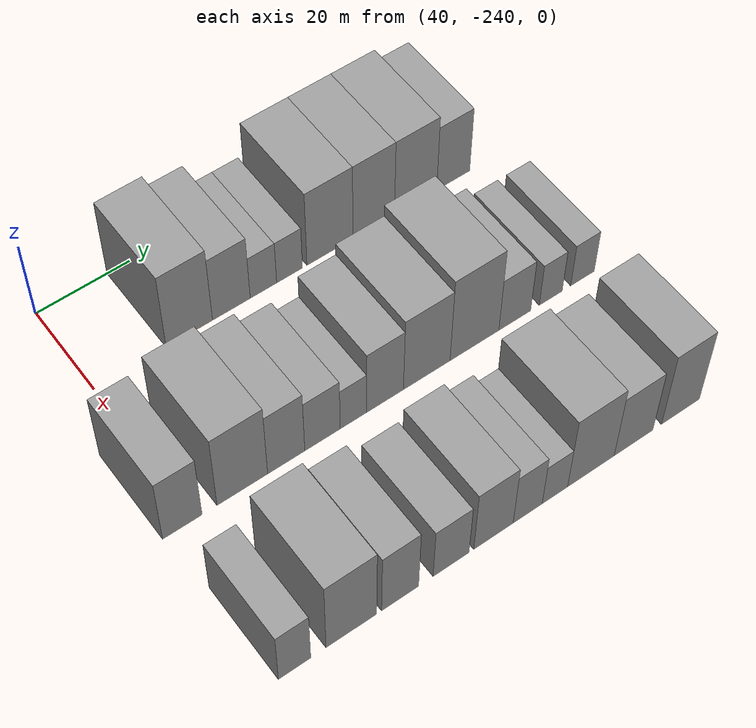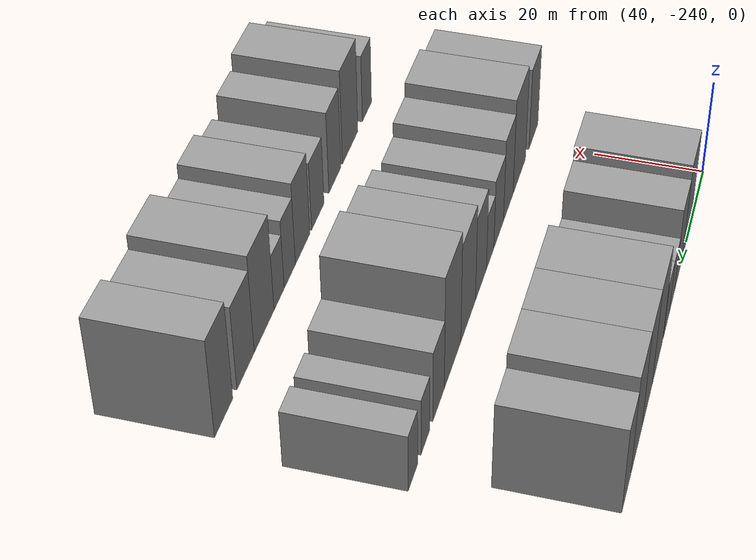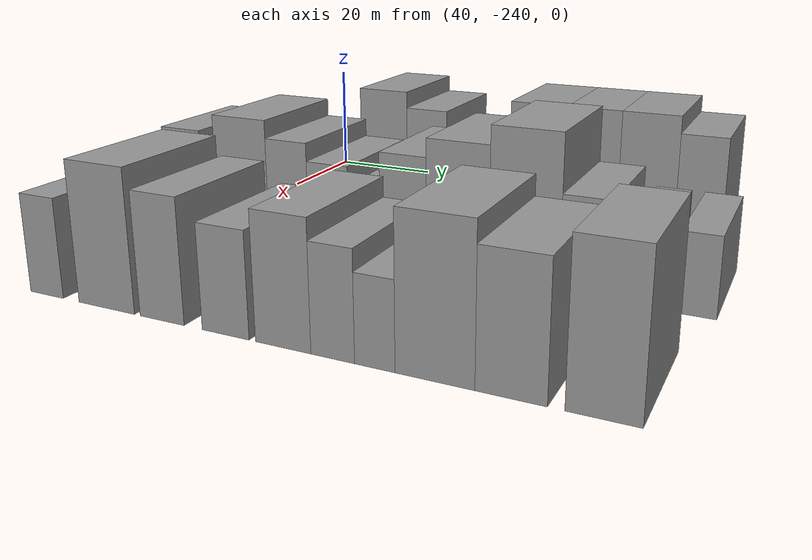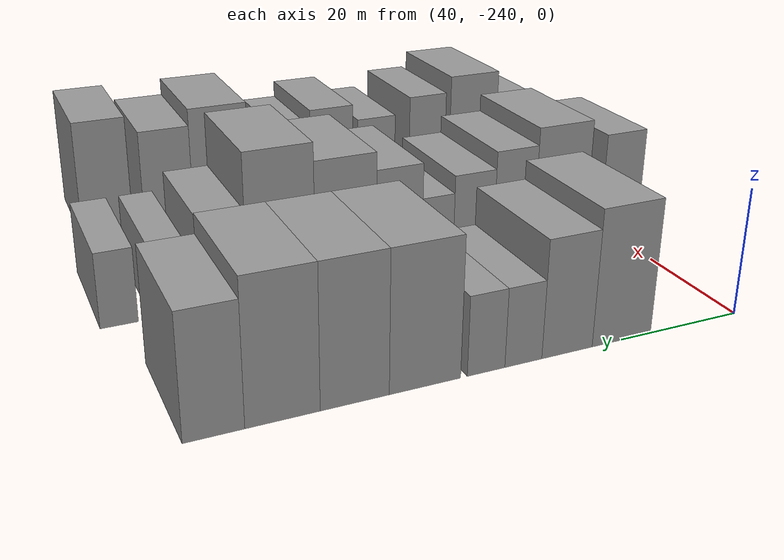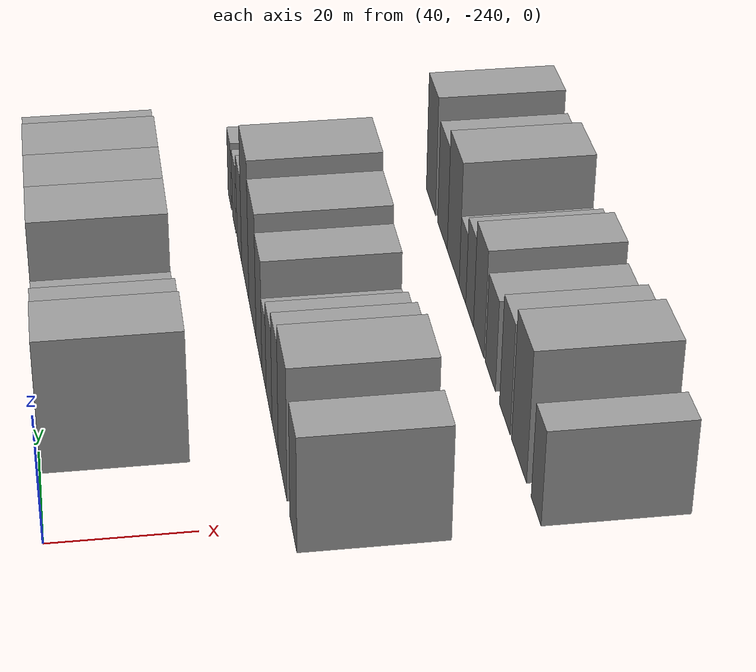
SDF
<sdf version="1.6">
 <world name="default">
  <model name="building_12">
   <static>1</static>
   <pose>50.0000 -219.9695 0 0.000000 0.000000 0.000000</pose>
   <link name="link">
    <pose>0 0 10.50 0 0 0</pose>
    <collision name="collision"><geometry><box><size>20.0000 9.8990 21.0000</size></box></geometry></collision>
    <visual name="visual">
     <cast_shadows>0</cast_shadows>
     <geometry><box><size>20.0000 9.8990 21.0000</size></box></geometry>
     <material>
      <script>
       <uri>model://grey_wall/materials/scripts</uri>
       <uri>model://grey_wall/materials/textures</uri>
       <name>vrc/grey_wall</name>
      </script>
     </material>
    </visual>
   </link>
  </model>
  <model name="building_13">
   <static>1</static>
   <pose>50.0000 -210.9266 0 0.000000 0.000000 0.000000</pose>
   <link name="link">
    <pose>0 0 9.00 0 0 0</pose>
    <collision name="collision"><geometry><box><size>20.0000 8.1867 18.0000</size></box></geometry></collision>
    <visual name="visual">
     <cast_shadows>0</cast_shadows>
     <geometry><box><size>20.0000 8.1867 18.0000</size></box></geometry>
     <material>
      <script>
       <uri>model://grey_wall/materials/scripts</uri>
       <uri>model://grey_wall/materials/textures</uri>
       <name>vrc/grey_wall</name>
      </script>
     </material>
    </visual>
   </link>
  </model>
  <model name="building_14">
   <static>1</static>
   <pose>50.0000 -203.9265 0 0.000000 0.000000 0.000000</pose>
   <link name="link">
    <pose>0 0 6.00 0 0 0</pose>
    <collision name="collision"><geometry><box><size>20.0000 5.8134 12.0000</size></box></geometry></collision>
    <visual name="visual">
     <cast_shadows>0</cast_shadows>
     <geometry><box><size>20.0000 5.8134 12.0000</size></box></geometry>
     <material>
      <script>
       <uri>model://grey_wall/materials/scripts</uri>
       <uri>model://grey_wall/materials/textures</uri>
       <name>vrc/grey_wall</name>
      </script>
     </material>
    </visual>
   </link>
  </model>
  <model name="building_15">
   <static>1</static>
   <pose>50.0000 -198.1525 0 0.000000 0.000000 0.000000</pose>
   <link name="link">
    <pose>0 0 6.00 0 0 0</pose>
    <collision name="collision"><geometry><box><size>20.0000 5.7346 12.0000</size></box></geometry></collision>
    <visual name="visual">
     <cast_shadows>0</cast_shadows>
     <geometry><box><size>20.0000 5.7346 12.0000</size></box></geometry>
     <material>
      <script>
       <uri>model://grey_wall/materials/scripts</uri>
       <uri>model://grey_wall/materials/textures</uri>
       <name>vrc/grey_wall</name>
      </script>
     </material>
    </visual>
   </link>
  </model>
  <model name="building_16">
   <static>1</static>
   <pose>50.0000 -189.0835 0 0.000000 0.000000 0.000000</pose>
   <link name="link">
    <pose>0 0 10.50 0 0 0</pose>
    <collision name="collision"><geometry><box><size>20.0000 10.4035 21.0000</size></box></geometry></collision>
    <visual name="visual">
     <cast_shadows>0</cast_shadows>
     <geometry><box><size>20.0000 10.4035 21.0000</size></box></geometry>
     <material>
      <script>
       <uri>model://grey_wall/materials/scripts</uri>
       <uri>model://grey_wall/materials/textures</uri>
       <name>vrc/grey_wall</name>
      </script>
     </material>
    </visual>
   </link>
  </model>
  <model name="building_17">
   <static>1</static>
   <pose>50.0000 -179.0942 0 0.000000 0.000000 0.000000</pose>
   <link name="link">
    <pose>0 0 10.50 0 0 0</pose>
    <collision name="collision"><geometry><box><size>20.0000 9.5750 21.0000</size></box></geometry></collision>
    <visual name="visual">
     <cast_shadows>0</cast_shadows>
     <geometry><box><size>20.0000 9.5750 21.0000</size></box></geometry>
     <material>
      <script>
       <uri>model://grey_wall/materials/scripts</uri>
       <uri>model://grey_wall/materials/textures</uri>
       <name>vrc/grey_wall</name>
      </script>
     </material>
    </visual>
   </link>
  </model>
  <model name="building_18">
   <static>1</static>
   <pose>50.0000 -169.3435 0 0.000000 0.000000 0.000000</pose>
   <link name="link">
    <pose>0 0 10.50 0 0 0</pose>
    <collision name="collision"><geometry><box><size>20.0000 9.9265 21.0000</size></box></geometry></collision>
    <visual name="visual">
     <cast_shadows>0</cast_shadows>
     <geometry><box><size>20.0000 9.9265 21.0000</size></box></geometry>
     <material>
      <script>
       <uri>model://grey_wall/materials/scripts</uri>
       <uri>model://grey_wall/materials/textures</uri>
       <name>vrc/grey_wall</name>
      </script>
     </material>
    </visual>
   </link>
  </model>
  <model name="building_19">
   <static>1</static>
   <pose>50.0000 -160.4506 0 0.000000 0.000000 0.000000</pose>
   <link name="link">
    <pose>0 0 9.00 0 0 0</pose>
    <collision name="collision"><geometry><box><size>20.0000 7.8593 18.0000</size></box></geometry></collision>
    <visual name="visual">
     <cast_shadows>0</cast_shadows>
     <geometry><box><size>20.0000 7.8593 18.0000</size></box></geometry>
     <material>
      <script>
       <uri>model://grey_wall/materials/scripts</uri>
       <uri>model://grey_wall/materials/textures</uri>
       <name>vrc/grey_wall</name>
      </script>
     </material>
    </visual>
   </link>
  </model>
  <model name="building_83">
   <static>1</static>
   <pose>82.0000 -242.2172 0 0.000000 0.000000 0.000000</pose>
   <link name="link">
    <pose>0 0 9.00 0 0 0</pose>
    <collision name="collision"><geometry><box><size>20.0000 7.8668 18.0000</size></box></geometry></collision>
    <visual name="visual">
     <cast_shadows>0</cast_shadows>
     <geometry><box><size>20.0000 7.8668 18.0000</size></box></geometry>
     <material>
      <script>
       <uri>model://grey_wall/materials/scripts</uri>
       <uri>model://grey_wall/materials/textures</uri>
       <name>vrc/grey_wall</name>
      </script>
     </material>
    </visual>
   </link>
  </model>
  <model name="building_84">
   <static>1</static>
   <pose>82.0000 -230.1115 0 0.000000 0.000000 0.000000</pose>
   <link name="link">
    <pose>0 0 10.50 0 0 0</pose>
    <collision name="collision"><geometry><box><size>20.0000 10.3445 21.0000</size></box></geometry></collision>
    <visual name="visual">
     <cast_shadows>0</cast_shadows>
     <geometry><box><size>20.0000 10.3445 21.0000</size></box></geometry>
     <material>
      <script>
       <uri>model://grey_wall/materials/scripts</uri>
       <uri>model://grey_wall/materials/textures</uri>
       <name>vrc/grey_wall</name>
      </script>
     </material>
    </visual>
   </link>
  </model>
  <model name="building_85">
   <static>1</static>
   <pose>82.0000 -221.0768 0 0.000000 0.000000 0.000000</pose>
   <link name="link">
    <pose>0 0 9.00 0 0 0</pose>
    <collision name="collision"><geometry><box><size>20.0000 7.7249 18.0000</size></box></geometry></collision>
    <visual name="visual">
     <cast_shadows>0</cast_shadows>
     <geometry><box><size>20.0000 7.7249 18.0000</size></box></geometry>
     <material>
      <script>
       <uri>model://grey_wall/materials/scripts</uri>
       <uri>model://grey_wall/materials/textures</uri>
       <name>vrc/grey_wall</name>
      </script>
     </material>
    </visual>
   </link>
  </model>
  <model name="building_86">
   <static>1</static>
   <pose>82.0000 -213.4769 0 0.000000 0.000000 0.000000</pose>
   <link name="link">
    <pose>0 0 7.50 0 0 0</pose>
    <collision name="collision"><geometry><box><size>20.0000 7.4748 15.0000</size></box></geometry></collision>
    <visual name="visual">
     <cast_shadows>0</cast_shadows>
     <geometry><box><size>20.0000 7.4748 15.0000</size></box></geometry>
     <material>
      <script>
       <uri>model://grey_wall/materials/scripts</uri>
       <uri>model://grey_wall/materials/textures</uri>
       <name>vrc/grey_wall</name>
      </script>
     </material>
    </visual>
   </link>
  </model>
  <model name="building_87">
   <static>1</static>
   <pose>82.0000 -206.9055 0 0.000000 0.000000 0.000000</pose>
   <link name="link">
    <pose>0 0 6.00 0 0 0</pose>
    <collision name="collision"><geometry><box><size>20.0000 5.6679 12.0000</size></box></geometry></collision>
    <visual name="visual">
     <cast_shadows>0</cast_shadows>
     <geometry><box><size>20.0000 5.6679 12.0000</size></box></geometry>
     <material>
      <script>
       <uri>model://grey_wall/materials/scripts</uri>
       <uri>model://grey_wall/materials/textures</uri>
       <name>vrc/grey_wall</name>
      </script>
     </material>
    </visual>
   </link>
  </model>
  <model name="building_88">
   <static>1</static>
   <pose>82.0000 -200.0838 0 0.000000 0.000000 0.000000</pose>
   <link name="link">
    <pose>0 0 9.00 0 0 0</pose>
    <collision name="collision"><geometry><box><size>20.0000 7.9754 18.0000</size></box></geometry></collision>
    <visual name="visual">
     <cast_shadows>0</cast_shadows>
     <geometry><box><size>20.0000 7.9754 18.0000</size></box></geometry>
     <material>
      <script>
       <uri>model://grey_wall/materials/scripts</uri>
       <uri>model://grey_wall/materials/textures</uri>
       <name>vrc/grey_wall</name>
      </script>
     </material>
    </visual>
   </link>
  </model>
  <model name="building_89">
   <static>1</static>
   <pose>82.0000 -190.9400 0 0.000000 0.000000 0.000000</pose>
   <link name="link">
    <pose>0 0 10.50 0 0 0</pose>
    <collision name="collision"><geometry><box><size>20.0000 10.3121 21.0000</size></box></geometry></collision>
    <visual name="visual">
     <cast_shadows>0</cast_shadows>
     <geometry><box><size>20.0000 10.3121 21.0000</size></box></geometry>
     <material>
      <script>
       <uri>model://grey_wall/materials/scripts</uri>
       <uri>model://grey_wall/materials/textures</uri>
       <name>vrc/grey_wall</name>
      </script>
     </material>
    </visual>
   </link>
  </model>
  <model name="building_90">
   <static>1</static>
   <pose>82.0000 -180.2757 0 0.000000 0.000000 0.000000</pose>
   <link name="link">
    <pose>0 0 12.00 0 0 0</pose>
    <collision name="collision"><geometry><box><size>20.0000 11.0167 24.0000</size></box></geometry></collision>
    <visual name="visual">
     <cast_shadows>0</cast_shadows>
     <geometry><box><size>20.0000 11.0167 24.0000</size></box></geometry>
     <material>
      <script>
       <uri>model://grey_wall/materials/scripts</uri>
       <uri>model://grey_wall/materials/textures</uri>
       <name>vrc/grey_wall</name>
      </script>
     </material>
    </visual>
   </link>
  </model>
  <model name="building_91">
   <static>1</static>
   <pose>82.0000 -171.1097 0 0.000000 0.000000 0.000000</pose>
   <link name="link">
    <pose>0 0 7.50 0 0 0</pose>
    <collision name="collision"><geometry><box><size>20.0000 7.3153 15.0000</size></box></geometry></collision>
    <visual name="visual">
     <cast_shadows>0</cast_shadows>
     <geometry><box><size>20.0000 7.3153 15.0000</size></box></geometry>
     <material>
      <script>
       <uri>model://grey_wall/materials/scripts</uri>
       <uri>model://grey_wall/materials/textures</uri>
       <name>vrc/grey_wall</name>
      </script>
     </material>
    </visual>
   </link>
  </model>
  <model name="building_92">
   <static>1</static>
   <pose>82.0000 -162.7791 0 0.000000 0.000000 0.000000</pose>
   <link name="link">
    <pose>0 0 6.00 0 0 0</pose>
    <collision name="collision"><geometry><box><size>20.0000 5.3459 12.0000</size></box></geometry></collision>
    <visual name="visual">
     <cast_shadows>0</cast_shadows>
     <geometry><box><size>20.0000 5.3459 12.0000</size></box></geometry>
     <material>
      <script>
       <uri>model://grey_wall/materials/scripts</uri>
       <uri>model://grey_wall/materials/textures</uri>
       <name>vrc/grey_wall</name>
      </script>
     </material>
    </visual>
   </link>
  </model>
  <model name="building_93">
   <static>1</static>
   <pose>82.0000 -155.3206 0 0.000000 0.000000 0.000000</pose>
   <link name="link">
    <pose>0 0 6.00 0 0 0</pose>
    <collision name="collision"><geometry><box><size>20.0000 5.5711 12.0000</size></box></geometry></collision>
    <visual name="visual">
     <cast_shadows>0</cast_shadows>
     <geometry><box><size>20.0000 5.5711 12.0000</size></box></geometry>
     <material>
      <script>
       <uri>model://grey_wall/materials/scripts</uri>
       <uri>model://grey_wall/materials/textures</uri>
       <name>vrc/grey_wall</name>
      </script>
     </material>
    </visual>
   </link>
  </model>
  <model name="building_164">
   <static>1</static>
   <pose>114.0000 -241.6384 0 0.000000 0.000000 0.000000</pose>
   <link name="link">
    <pose>0 0 7.50 0 0 0</pose>
    <collision name="collision"><geometry><box><size>20.0000 6.3014 15.0000</size></box></geometry></collision>
    <visual name="visual">
     <cast_shadows>0</cast_shadows>
     <geometry><box><size>20.0000 6.3014 15.0000</size></box></geometry>
     <material>
      <script>
       <uri>model://grey_wall/materials/scripts</uri>
       <uri>model://grey_wall/materials/textures</uri>
       <name>vrc/grey_wall</name>
      </script>
     </material>
    </visual>
   </link>
  </model>
  <model name="building_165">
   <static>1</static>
   <pose>114.0000 -230.4397 0 0.000000 0.000000 0.000000</pose>
   <link name="link">
    <pose>0 0 10.50 0 0 0</pose>
    <collision name="collision"><geometry><box><size>20.0000 10.0960 21.0000</size></box></geometry></collision>
    <visual name="visual">
     <cast_shadows>0</cast_shadows>
     <geometry><box><size>20.0000 10.0960 21.0000</size></box></geometry>
     <material>
      <script>
       <uri>model://grey_wall/materials/scripts</uri>
       <uri>model://grey_wall/materials/textures</uri>
       <name>vrc/grey_wall</name>
      </script>
     </material>
    </visual>
   </link>
  </model>
  <model name="building_166">
   <static>1</static>
   <pose>114.0000 -220.6258 0 0.000000 0.000000 0.000000</pose>
   <link name="link">
    <pose>0 0 9.00 0 0 0</pose>
    <collision name="collision"><geometry><box><size>20.0000 7.5319 18.0000</size></box></geometry></collision>
    <visual name="visual">
     <cast_shadows>0</cast_shadows>
     <geometry><box><size>20.0000 7.5319 18.0000</size></box></geometry>
     <material>
      <script>
       <uri>model://grey_wall/materials/scripts</uri>
       <uri>model://grey_wall/materials/textures</uri>
       <name>vrc/grey_wall</name>
      </script>
     </material>
    </visual>
   </link>
  </model>
  <model name="building_167">
   <static>1</static>
   <pose>114.0000 -210.1165 0 0.000000 0.000000 0.000000</pose>
   <link name="link">
    <pose>0 0 7.50 0 0 0</pose>
    <collision name="collision"><geometry><box><size>20.0000 7.4866 15.0000</size></box></geometry></collision>
    <visual name="visual">
     <cast_shadows>0</cast_shadows>
     <geometry><box><size>20.0000 7.4866 15.0000</size></box></geometry>
     <material>
      <script>
       <uri>model://grey_wall/materials/scripts</uri>
       <uri>model://grey_wall/materials/textures</uri>
       <name>vrc/grey_wall</name>
      </script>
     </material>
    </visual>
   </link>
  </model>
  <model name="building_168">
   <static>1</static>
   <pose>114.0000 -201.2043 0 0.000000 0.000000 0.000000</pose>
   <link name="link">
    <pose>0 0 9.00 0 0 0</pose>
    <collision name="collision"><geometry><box><size>20.0000 8.3377 18.0000</size></box></geometry></collision>
    <visual name="visual">
     <cast_shadows>0</cast_shadows>
     <geometry><box><size>20.0000 8.3377 18.0000</size></box></geometry>
     <material>
      <script>
       <uri>model://grey_wall/materials/scripts</uri>
       <uri>model://grey_wall/materials/textures</uri>
       <name>vrc/grey_wall</name>
      </script>
     </material>
    </visual>
   </link>
  </model>
  <model name="building_169">
   <static>1</static>
   <pose>114.0000 -193.9066 0 0.000000 0.000000 0.000000</pose>
   <link name="link">
    <pose>0 0 7.50 0 0 0</pose>
    <collision name="collision"><geometry><box><size>20.0000 6.2577 15.0000</size></box></geometry></collision>
    <visual name="visual">
     <cast_shadows>0</cast_shadows>
     <geometry><box><size>20.0000 6.2577 15.0000</size></box></geometry>
     <material>
      <script>
       <uri>model://grey_wall/materials/scripts</uri>
       <uri>model://grey_wall/materials/textures</uri>
       <name>vrc/grey_wall</name>
      </script>
     </material>
    </visual>
   </link>
  </model>
  <model name="building_170">
   <static>1</static>
   <pose>114.0000 -188.0047 0 0.000000 0.000000 0.000000</pose>
   <link name="link">
    <pose>0 0 6.00 0 0 0</pose>
    <collision name="collision"><geometry><box><size>20.0000 5.5461 12.0000</size></box></geometry></collision>
    <visual name="visual">
     <cast_shadows>0</cast_shadows>
     <geometry><box><size>20.0000 5.5461 12.0000</size></box></geometry>
     <material>
      <script>
       <uri>model://grey_wall/materials/scripts</uri>
       <uri>model://grey_wall/materials/textures</uri>
       <name>vrc/grey_wall</name>
      </script>
     </material>
    </visual>
   </link>
  </model>
  <model name="building_171">
   <static>1</static>
   <pose>114.0000 -180.0662 0 0.000000 0.000000 0.000000</pose>
   <link name="link">
    <pose>0 0 10.50 0 0 0</pose>
    <collision name="collision"><geometry><box><size>20.0000 10.3310 21.0000</size></box></geometry></collision>
    <visual name="visual">
     <cast_shadows>0</cast_shadows>
     <geometry><box><size>20.0000 10.3310 21.0000</size></box></geometry>
     <material>
      <script>
       <uri>model://grey_wall/materials/scripts</uri>
       <uri>model://grey_wall/materials/textures</uri>
       <name>vrc/grey_wall</name>
      </script>
     </material>
    </visual>
   </link>
  </model>
  <model name="building_172">
   <static>1</static>
   <pose>114.0000 -170.5269 0 0.000000 0.000000 0.000000</pose>
   <link name="link">
    <pose>0 0 9.00 0 0 0</pose>
    <collision name="collision"><geometry><box><size>20.0000 8.7475 18.0000</size></box></geometry></collision>
    <visual name="visual">
     <cast_shadows>0</cast_shadows>
     <geometry><box><size>20.0000 8.7475 18.0000</size></box></geometry>
     <material>
      <script>
       <uri>model://grey_wall/materials/scripts</uri>
       <uri>model://grey_wall/materials/textures</uri>
       <name>vrc/grey_wall</name>
      </script>
     </material>
    </visual>
   </link>
  </model>
  <model name="building_173">
   <static>1</static>
   <pose>114.0000 -159.7950 0 0.000000 0.000000 0.000000</pose>
   <link name="link">
    <pose>0 0 10.50 0 0 0</pose>
    <collision name="collision"><geometry><box><size>20.0000 8.7162 21.0000</size></box></geometry></collision>
    <visual name="visual">
     <cast_shadows>0</cast_shadows>
     <geometry><box><size>20.0000 8.7162 21.0000</size></box></geometry>
     <material>
      <script>
       <uri>model://grey_wall/materials/scripts</uri>
       <uri>model://grey_wall/materials/textures</uri>
       <name>vrc/grey_wall</name>
      </script>
     </material>
    </visual>
   </link>
  </model>
 </world>
</sdf>
